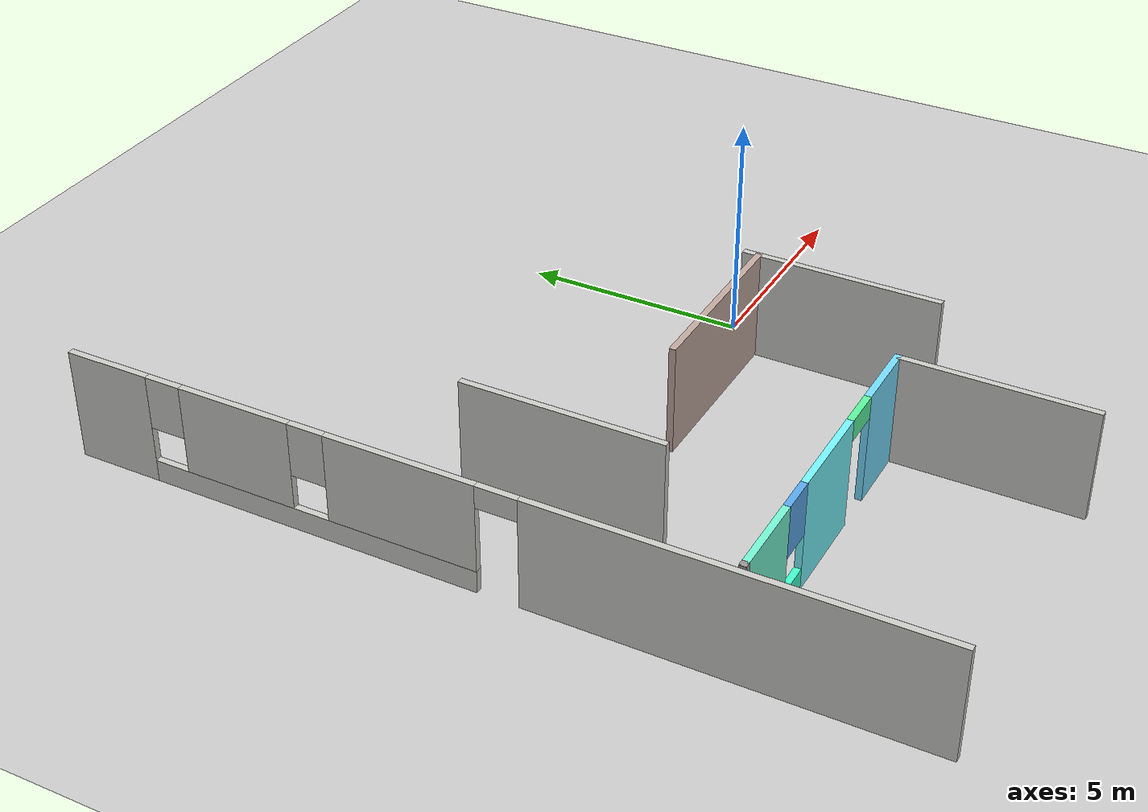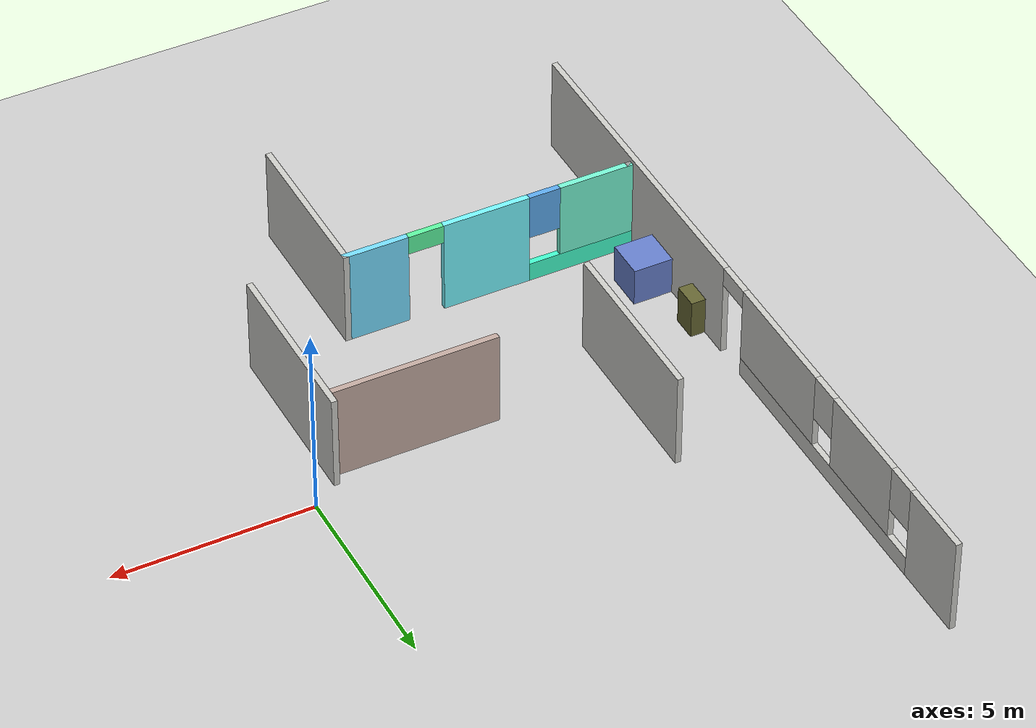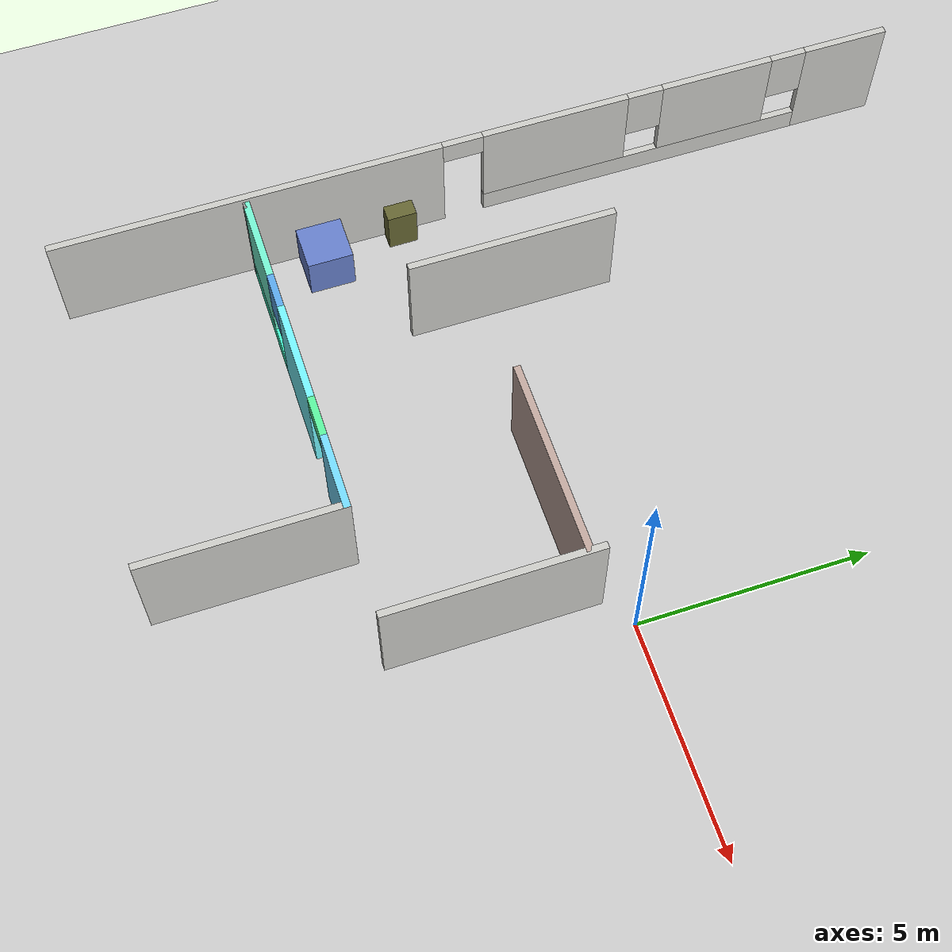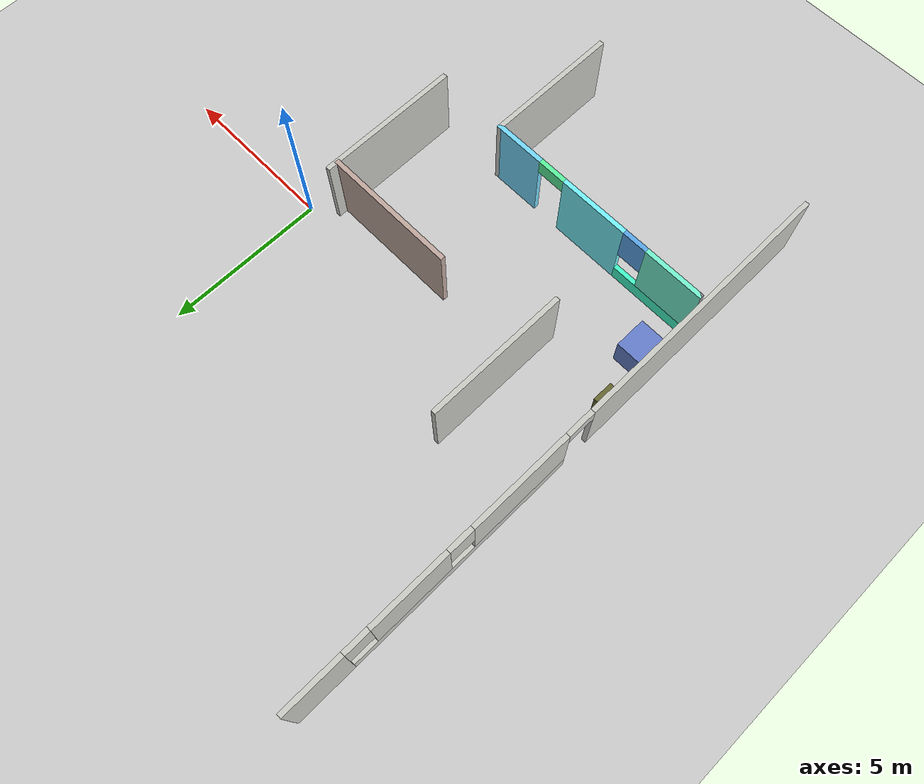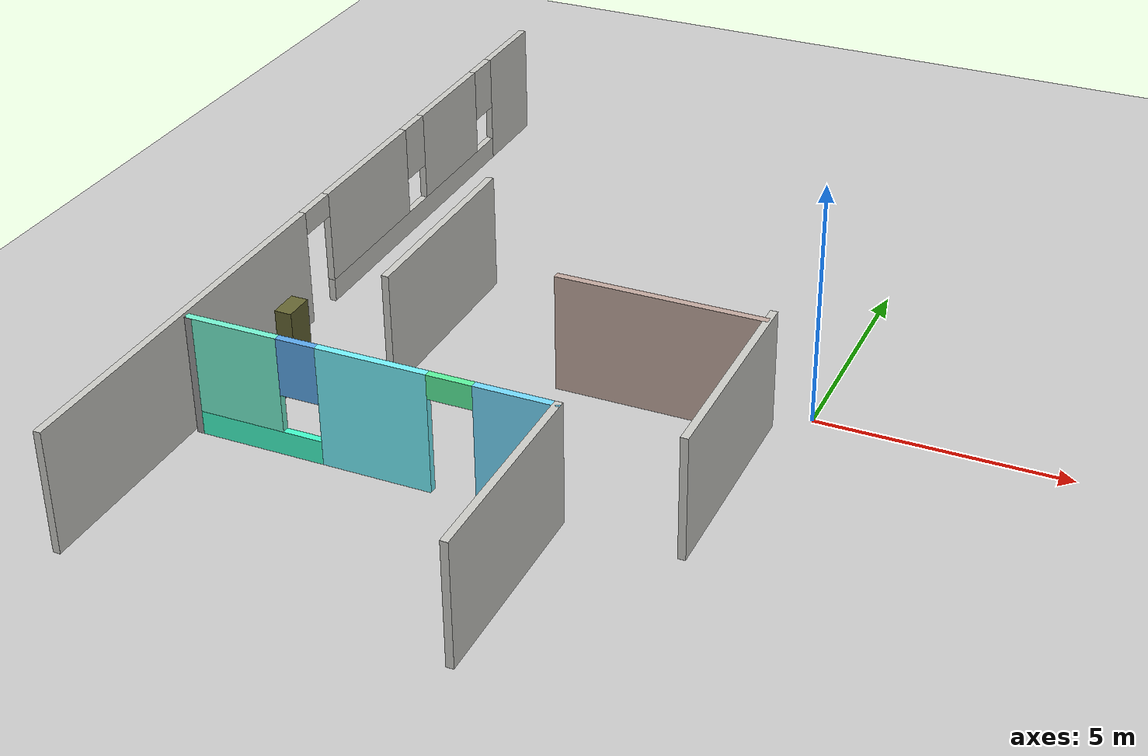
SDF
<sdf version="1.7">
 <world name="default">
  <model name="ground_plane">
   <static>1</static>
   <link name="link">
    <collision name="collision">
     <geometry><plane><normal>0 0 1</normal><size>100 100</size></plane></geometry>
     <surface><friction><ode><mu>100</mu><mu2>50</mu2></ode></friction></surface>
    </collision>
    <visual name="visual">
     <cast_shadows>0</cast_shadows>
     <geometry><plane><normal>0 0 1</normal><size>100 100</size></plane></geometry>
     <material>
      <script><uri>file://media/materials/scripts/gazebo.material</uri><name>Gazebo/Grey</name></script>
     </material>
    </visual>
   </link>
  </model>
  <model name="unit_box9">
   <link name="link">
    <inertial>
     <mass>1</mass>
     <inertia>
      <ixx>0.166667</ixx>
      <ixy>0</ixy>
      <ixz>0</ixz>
      <iyy>0.166667</iyy>
      <iyz>0</iyz>
      <izz>0.166667</izz>
     </inertia>
    </inertial>
    <visual name="visual">
     <geometry><box><size>1 1 1</size></box></geometry>
     <material>
      <script><name>Gazebo/Grey</name><uri>file://media/materials/scripts/gazebo.material</uri></script>
      <shader type="pixel"><normal_map>__default__</normal_map></shader>
      <ambient>0.4 0.5 0.8 0</ambient>
      <diffuse>0.7 0.7 0.7 1</diffuse>
      <specular>0.01 0.01 0.01 1</specular>
      <emissive>0 0 0 1</emissive>
     </material>
    </visual>
    <collision name="collision">
     <geometry><box><size>1 1 1</size></box></geometry>
     <surface>
      <friction>
       <ode><mu>1</mu><mu2>1</mu2><fdir1>0 0 0</fdir1><slip1>0</slip1><slip2>0</slip2></ode>
       <torsional>
        <coefficient>1</coefficient>
        <patch_radius>0</patch_radius>
        <surface_radius>0</surface_radius>
        <use_patch_radius>1</use_patch_radius>
        <ode><slip>0</slip></ode>
       </torsional>
      </friction>
      <bounce><restitution_coefficient>0</restitution_coefficient><threshold>1e+06</threshold></bounce>
      <contact>
       <collide_without_contact>0</collide_without_contact>
       <collide_without_contact_bitmask>1</collide_without_contact_bitmask>
       <collide_bitmask>1</collide_bitmask>
       <ode>
        <soft_cfm>0</soft_cfm>
        <soft_erp>0.2</soft_erp>
        <kp>1e+13</kp>
        <kd>1</kd>
        <max_vel>0.01</max_vel>
        <min_depth>0</min_depth>
       </ode>
       <bullet>
        <split_impulse>1</split_impulse>
        <split_impulse_penetration_threshold>-0.01</split_impulse_penetration_threshold>
        <soft_cfm>0</soft_cfm>
        <soft_erp>0.2</soft_erp>
        <kp>1e+13</kp>
        <kd>1</kd>
       </bullet>
      </contact>
     </surface>
    </collision>
   </link>
   <static>0</static>
   <pose>-10.066 -3.39499 0.5 0 0 -5e-06</pose>
  </model>
  <model name="ball_bearing">
   <link name="link">
    <pose>0 0 0.003 0 -0 0</pose>
    <inertial>
     <mass>0.0011</mass>
     <inertia>
      <ixx>3.96e-09</ixx>
      <ixy>0</ixy>
      <ixz>0</ixz>
      <iyy>3.96e-09</iyy>
      <iyz>0</iyz>
      <izz>3.96e-09</izz>
     </inertia>
    </inertial>
    <collision name="collision">
     <geometry><sphere><radius>0.003</radius></sphere></geometry>
     <surface>
      <contact>
       <poissons_ratio>0.305</poissons_ratio>
       <elastic_modulus>2e+11</elastic_modulus>
       <ode><kp>100000</kp><kd>100</kd><max_vel>100</max_vel><min_depth>0.001</min_depth></ode>
      </contact>
      <friction>
       <torsional>
        <coefficient>1</coefficient>
        <use_patch_radius>0</use_patch_radius>
        <surface_radius>0.01</surface_radius>
       </torsional>
      </friction>
     </surface>
    </collision>
    <visual name="visual">
     <geometry><sphere><radius>0.003</radius></sphere></geometry>
     <material>
      <script><uri>file://media/materials/scripts/gazebo.material</uri><name>Gazebo/Grey</name></script>
     </material>
    </visual>
    <velocity_decay><linear>0</linear><angular>0.005</angular></velocity_decay>
   </link>
   <pose>-4.13788 -6.77252 -0.001 0 -0 0</pose>
  </model>
  <model name="unit_box14">
   <link name="link">
    <inertial>
     <mass>1</mass>
     <inertia>
      <ixx>0.166667</ixx>
      <ixy>0</ixy>
      <ixz>0</ixz>
      <iyy>0.166667</iyy>
      <iyz>0</iyz>
      <izz>0.166667</izz>
     </inertia>
    </inertial>
    <visual name="visual">
     <geometry><box><size>0.369721 0.645498 1</size></box></geometry>
     <material>
      <script><name>Gazebo/Grey</name><uri>file://media/materials/scripts/gazebo.material</uri></script>
      <shader type="pixel"><normal_map>__default__</normal_map></shader>
      <ambient>0.4 0.4 0.2 0</ambient>
      <diffuse>0.7 0.7 0.7 1</diffuse>
      <specular>0.01 0.01 0.01 1</specular>
      <emissive>0 0 0 1</emissive>
     </material>
    </visual>
    <collision name="collision">
     <geometry><box><size>0.369721 0.645498 1</size></box></geometry>
     <surface>
      <friction>
       <ode><mu>1</mu><mu2>1</mu2><fdir1>0 0 0</fdir1><slip1>0</slip1><slip2>0</slip2></ode>
       <torsional>
        <coefficient>1</coefficient>
        <patch_radius>0</patch_radius>
        <surface_radius>0</surface_radius>
        <use_patch_radius>1</use_patch_radius>
        <ode><slip>0</slip></ode>
       </torsional>
      </friction>
      <bounce><restitution_coefficient>0</restitution_coefficient><threshold>1e+06</threshold></bounce>
      <contact>
       <collide_without_contact>0</collide_without_contact>
       <collide_without_contact_bitmask>1</collide_without_contact_bitmask>
       <collide_bitmask>1</collide_bitmask>
       <ode>
        <soft_cfm>0</soft_cfm>
        <soft_erp>0.2</soft_erp>
        <kp>1e+13</kp>
        <kd>1</kd>
        <max_vel>0.01</max_vel>
        <min_depth>0</min_depth>
       </ode>
       <bullet>
        <split_impulse>1</split_impulse>
        <split_impulse_penetration_threshold>-0.01</split_impulse_penetration_threshold>
        <soft_cfm>0</soft_cfm>
        <soft_erp>0.2</soft_erp>
        <kp>1e+13</kp>
        <kd>1</kd>
       </bullet>
      </contact>
     </surface>
    </collision>
   </link>
   <static>0</static>
   <pose>-10.3777 -1.60096 0.5 0 -0 5e-06</pose>
  </model>
  <model name="training_area">
   <link name="Wall_11">
    <pose>-2.97768 -7.23047 0 0 0 -1.5708</pose>
    <visual name="Wall_11_Visual">
     <pose>0 0 1.25 0 -0 0</pose>
     <geometry><box><size>4.25 0.15 2.5</size></box></geometry>
     <material>
      <script><uri>file://media/materials/scripts/gazebo.material</uri><name>Gazebo/CeilingTiled</name></script>
      <ambient>0.760784 0.662745 0.627451 1</ambient>
      <shader type="pixel"/>
     </material>
     <meta><layer>0</layer></meta>
    </visual>
    <collision name="Wall_11_Collision">
     <pose>0 0 1.25 0 -0 0</pose>
     <geometry><box><size>4.25 0.15 2.5</size></box></geometry>
     <surface>
      <friction>
       <ode><mu>1</mu><mu2>1</mu2><fdir1>0 0 0</fdir1><slip1>0</slip1><slip2>0</slip2></ode>
       <torsional>
        <coefficient>1</coefficient>
        <patch_radius>0</patch_radius>
        <surface_radius>0</surface_radius>
        <use_patch_radius>1</use_patch_radius>
        <ode><slip>0</slip></ode>
       </torsional>
      </friction>
      <bounce><restitution_coefficient>0</restitution_coefficient><threshold>1e+06</threshold></bounce>
      <contact>
       <collide_without_contact>0</collide_without_contact>
       <collide_without_contact_bitmask>1</collide_without_contact_bitmask>
       <collide_bitmask>1</collide_bitmask>
       <ode>
        <soft_cfm>0</soft_cfm>
        <soft_erp>0.2</soft_erp>
        <kp>1e+13</kp>
        <kd>1</kd>
        <max_vel>0.01</max_vel>
        <min_depth>0</min_depth>
       </ode>
       <bullet>
        <split_impulse>1</split_impulse>
        <split_impulse_penetration_threshold>-0.01</split_impulse_penetration_threshold>
        <soft_cfm>0</soft_cfm>
        <soft_erp>0.2</soft_erp>
        <kp>1e+13</kp>
        <kd>1</kd>
       </bullet>
      </contact>
     </surface>
    </collision>
   </link>
   <link name="Wall_13">
    <pose>-6.65268 -5.18047 0 0 -0 3.14159</pose>
    <inertial>
     <mass>1</mass>
     <inertia><ixx>1</ixx><ixy>0</ixy><ixz>0</ixz><iyy>1</iyy><iyz>0</iyz><izz>1</izz></inertia>
    </inertial>
    <visual name="Wall_13_Visual_2">
     <pose>2.39091 0 0.25 0 -0 0</pose>
     <geometry><box><size>2.71819 0.15 0.5</size></box></geometry>
     <material>
      <script><uri>file://media/materials/scripts/gazebo.material</uri><name>Gazebo/Grey</name></script>
      <ambient>0.261 1 0.8 1</ambient>
      <shader type="pixel"><normal_map>__default__</normal_map></shader>
      <diffuse>0.7 0.7 0.7 1</diffuse>
      <specular>0.01 0.01 0.01 1</specular>
      <emissive>0 0 0 1</emissive>
     </material>
     <meta><layer>0</layer></meta>
    </visual>
    <visual name="Wall_13_Visual_5">
     <pose>-1.64458 0 2.25 0 -0 0</pose>
     <geometry><box><size>0.9 0.15 0.5</size></box></geometry>
     <material>
      <script><uri>file://media/materials/scripts/gazebo.material</uri><name>Gazebo/Grey</name></script>
      <ambient>0.361 0.963 0.627 1</ambient>
      <shader type="pixel"><normal_map>__default__</normal_map></shader>
      <diffuse>0.7 0.7 0.7 1</diffuse>
      <specular>0.01 0.01 0.01 1</specular>
      <emissive>0 0 0 1</emissive>
     </material>
     <meta><layer>0</layer></meta>
    </visual>
    <visual name="Wall_13_Visual_3">
     <pose>2.79091 0 1.5 0 -0 0</pose>
     <geometry><box><size>1.91819 0.15 2</size></box></geometry>
     <material>
      <script><uri>file://media/materials/scripts/gazebo.material</uri><name>Gazebo/Grey</name></script>
      <ambient>0.461 0.963 0.827 1</ambient>
      <shader type="pixel"><normal_map>__default__</normal_map></shader>
      <diffuse>0.7 0.7 0.7 1</diffuse>
      <specular>0.01 0.01 0.01 1</specular>
      <emissive>0 0 0 1</emissive>
     </material>
     <meta><layer>0</layer></meta>
    </visual>
    <visual name="Wall_13_Visual_1">
     <pose>-0.081383 0 1.25 0 -0 0</pose>
     <geometry><box><size>2.22639 0.15 2.5</size></box></geometry>
     <material>
      <script><uri>file://media/materials/scripts/gazebo.material</uri><name>Gazebo/Grey</name></script>
      <ambient>0.461 0.963 1 1</ambient>
      <shader type="pixel"><normal_map>__default__</normal_map></shader>
      <diffuse>0.7 0.7 0.7 1</diffuse>
      <specular>0.01 0.01 0.01 1</specular>
      <emissive>0 0 0 1</emissive>
     </material>
     <meta><layer>0</layer></meta>
    </visual>
    <visual name="Wall_13_Visual_4">
     <pose>1.43181 0 1.9 0 -0 0</pose>
     <geometry><box><size>0.8 0.15 1.2</size></box></geometry>
     <material>
      <script><uri>file://media/materials/scripts/gazebo.material</uri><name>Gazebo/Grey</name></script>
      <ambient>0.361 0.663 0.927 1</ambient>
      <shader type="pixel"><normal_map>__default__</normal_map></shader>
      <diffuse>0.7 0.7 0.7 1</diffuse>
      <specular>0.01 0.01 0.01 1</specular>
      <emissive>0 0 0 1</emissive>
     </material>
     <meta><layer>0</layer></meta>
    </visual>
    <visual name="Wall_13_Visual_0">
     <pose>-2.92229 0 1.25 0 -0 0</pose>
     <geometry><box><size>1.65542 0.15 2.5</size></box></geometry>
     <material>
      <script><uri>file://media/materials/scripts/gazebo.material</uri><name>Gazebo/Grey</name></script>
      <ambient>0.461 0.863 1 1</ambient>
      <shader type="pixel"><normal_map>__default__</normal_map></shader>
      <diffuse>0.7 0.7 0.7 1</diffuse>
      <specular>0.01 0.01 0.01 1</specular>
      <emissive>0 0 0 1</emissive>
     </material>
     <meta><layer>0</layer></meta>
    </visual>
    <collision name="Wall_13_Collision_4">
     <pose>1.43181 0 1.9 0 -0 0</pose>
     <geometry><box><size>0.8 0.15 1.2</size></box></geometry>
     <surface>
      <friction>
       <ode><mu>1</mu><mu2>1</mu2><fdir1>0 0 0</fdir1><slip1>0</slip1><slip2>0</slip2></ode>
       <torsional>
        <coefficient>1</coefficient>
        <patch_radius>0</patch_radius>
        <surface_radius>0</surface_radius>
        <use_patch_radius>1</use_patch_radius>
        <ode><slip>0</slip></ode>
       </torsional>
      </friction>
      <bounce><restitution_coefficient>0</restitution_coefficient><threshold>1e+06</threshold></bounce>
      <contact>
       <collide_without_contact>0</collide_without_contact>
       <collide_without_contact_bitmask>1</collide_without_contact_bitmask>
       <collide_bitmask>1</collide_bitmask>
       <ode>
        <soft_cfm>0</soft_cfm>
        <soft_erp>0.2</soft_erp>
        <kp>1e+13</kp>
        <kd>1</kd>
        <max_vel>0.01</max_vel>
        <min_depth>0</min_depth>
       </ode>
       <bullet>
        <split_impulse>1</split_impulse>
        <split_impulse_penetration_threshold>-0.01</split_impulse_penetration_threshold>
        <soft_cfm>0</soft_cfm>
        <soft_erp>0.2</soft_erp>
        <kp>1e+13</kp>
        <kd>1</kd>
       </bullet>
      </contact>
     </surface>
    </collision>
    <collision name="Wall_13_Collision_1">
     <pose>-0.081383 0 1.25 0 -0 0</pose>
     <geometry><box><size>2.22639 0.15 2.5</size></box></geometry>
     <surface>
      <friction>
       <ode><mu>1</mu><mu2>1</mu2><fdir1>0 0 0</fdir1><slip1>0</slip1><slip2>0</slip2></ode>
       <torsional>
        <coefficient>1</coefficient>
        <patch_radius>0</patch_radius>
        <surface_radius>0</surface_radius>
        <use_patch_radius>1</use_patch_radius>
        <ode><slip>0</slip></ode>
       </torsional>
      </friction>
      <bounce><restitution_coefficient>0</restitution_coefficient><threshold>1e+06</threshold></bounce>
      <contact>
       <collide_without_contact>0</collide_without_contact>
       <collide_without_contact_bitmask>1</collide_without_contact_bitmask>
       <collide_bitmask>1</collide_bitmask>
       <ode>
        <soft_cfm>0</soft_cfm>
        <soft_erp>0.2</soft_erp>
        <kp>1e+13</kp>
        <kd>1</kd>
        <max_vel>0.01</max_vel>
        <min_depth>0</min_depth>
       </ode>
       <bullet>
        <split_impulse>1</split_impulse>
        <split_impulse_penetration_threshold>-0.01</split_impulse_penetration_threshold>
        <soft_cfm>0</soft_cfm>
        <soft_erp>0.2</soft_erp>
        <kp>1e+13</kp>
        <kd>1</kd>
       </bullet>
      </contact>
     </surface>
    </collision>
    <collision name="Wall_13_Collision_2">
     <pose>2.39091 0 0.25 0 -0 0</pose>
     <geometry><box><size>2.71819 0.15 0.5</size></box></geometry>
     <surface>
      <friction>
       <ode><mu>1</mu><mu2>1</mu2><fdir1>0 0 0</fdir1><slip1>0</slip1><slip2>0</slip2></ode>
       <torsional>
        <coefficient>1</coefficient>
        <patch_radius>0</patch_radius>
        <surface_radius>0</surface_radius>
        <use_patch_radius>1</use_patch_radius>
        <ode><slip>0</slip></ode>
       </torsional>
      </friction>
      <bounce><restitution_coefficient>0</restitution_coefficient><threshold>1e+06</threshold></bounce>
      <contact>
       <collide_without_contact>0</collide_without_contact>
       <collide_without_contact_bitmask>1</collide_without_contact_bitmask>
       <collide_bitmask>1</collide_bitmask>
       <ode>
        <soft_cfm>0</soft_cfm>
        <soft_erp>0.2</soft_erp>
        <kp>1e+13</kp>
        <kd>1</kd>
        <max_vel>0.01</max_vel>
        <min_depth>0</min_depth>
       </ode>
       <bullet>
        <split_impulse>1</split_impulse>
        <split_impulse_penetration_threshold>-0.01</split_impulse_penetration_threshold>
        <soft_cfm>0</soft_cfm>
        <soft_erp>0.2</soft_erp>
        <kp>1e+13</kp>
        <kd>1</kd>
       </bullet>
      </contact>
     </surface>
    </collision>
    <collision name="Wall_13_Collision_0">
     <pose>-2.92229 0 1.25 0 -0 0</pose>
     <geometry><box><size>1.65542 0.15 2.5</size></box></geometry>
     <surface>
      <friction>
       <ode><mu>1</mu><mu2>1</mu2><fdir1>0 0 0</fdir1><slip1>0</slip1><slip2>0</slip2></ode>
       <torsional>
        <coefficient>1</coefficient>
        <patch_radius>0</patch_radius>
        <surface_radius>0</surface_radius>
        <use_patch_radius>1</use_patch_radius>
        <ode><slip>0</slip></ode>
       </torsional>
      </friction>
      <bounce><restitution_coefficient>0</restitution_coefficient><threshold>1e+06</threshold></bounce>
      <contact>
       <collide_without_contact>0</collide_without_contact>
       <collide_without_contact_bitmask>1</collide_without_contact_bitmask>
       <collide_bitmask>1</collide_bitmask>
       <ode>
        <soft_cfm>0</soft_cfm>
        <soft_erp>0.2</soft_erp>
        <kp>1e+13</kp>
        <kd>1</kd>
        <max_vel>0.01</max_vel>
        <min_depth>0</min_depth>
       </ode>
       <bullet>
        <split_impulse>1</split_impulse>
        <split_impulse_penetration_threshold>-0.01</split_impulse_penetration_threshold>
        <soft_cfm>0</soft_cfm>
        <soft_erp>0.2</soft_erp>
        <kp>1e+13</kp>
        <kd>1</kd>
       </bullet>
      </contact>
     </surface>
    </collision>
    <collision name="Wall_13_Collision_5">
     <pose>-1.64458 0 2.25 0 -0 0</pose>
     <geometry><box><size>0.9 0.15 0.5</size></box></geometry>
     <surface>
      <friction>
       <ode><mu>1</mu><mu2>1</mu2><fdir1>0 0 0</fdir1><slip1>0</slip1><slip2>0</slip2></ode>
       <torsional>
        <coefficient>1</coefficient>
        <patch_radius>0</patch_radius>
        <surface_radius>0</surface_radius>
        <use_patch_radius>1</use_patch_radius>
        <ode><slip>0</slip></ode>
       </torsional>
      </friction>
      <bounce><restitution_coefficient>0</restitution_coefficient><threshold>1e+06</threshold></bounce>
      <contact>
       <collide_without_contact>0</collide_without_contact>
       <collide_without_contact_bitmask>1</collide_without_contact_bitmask>
       <collide_bitmask>1</collide_bitmask>
       <ode>
        <soft_cfm>0</soft_cfm>
        <soft_erp>0.2</soft_erp>
        <kp>1e+13</kp>
        <kd>1</kd>
        <max_vel>0.01</max_vel>
        <min_depth>0</min_depth>
       </ode>
       <bullet>
        <split_impulse>1</split_impulse>
        <split_impulse_penetration_threshold>-0.01</split_impulse_penetration_threshold>
        <soft_cfm>0</soft_cfm>
        <soft_erp>0.2</soft_erp>
        <kp>1e+13</kp>
        <kd>1</kd>
       </bullet>
      </contact>
     </surface>
    </collision>
    <collision name="Wall_13_Collision_3">
     <pose>2.79091 0 1.5 0 -0 0</pose>
     <geometry><box><size>1.91819 0.15 2</size></box></geometry>
     <surface>
      <friction>
       <ode><mu>1</mu><mu2>1</mu2><fdir1>0 0 0</fdir1><slip1>0</slip1><slip2>0</slip2></ode>
       <torsional>
        <coefficient>1</coefficient>
        <patch_radius>0</patch_radius>
        <surface_radius>0</surface_radius>
        <use_patch_radius>1</use_patch_radius>
        <ode><slip>0</slip></ode>
       </torsional>
      </friction>
      <bounce><restitution_coefficient>0</restitution_coefficient><threshold>1e+06</threshold></bounce>
      <contact>
       <collide_without_contact>0</collide_without_contact>
       <collide_without_contact_bitmask>1</collide_without_contact_bitmask>
       <collide_bitmask>1</collide_bitmask>
       <ode>
        <soft_cfm>0</soft_cfm>
        <soft_erp>0.2</soft_erp>
        <kp>1e+13</kp>
        <kd>1</kd>
        <max_vel>0.01</max_vel>
        <min_depth>0</min_depth>
       </ode>
       <bullet>
        <split_impulse>1</split_impulse>
        <split_impulse_penetration_threshold>-0.01</split_impulse_penetration_threshold>
        <soft_cfm>0</soft_cfm>
        <soft_erp>0.2</soft_erp>
        <kp>1e+13</kp>
        <kd>1</kd>
       </bullet>
      </contact>
     </surface>
    </collision>
   </link>
   <link name="Wall_14">
    <pose>-10.3277 -5.18047 0 0 -0 0</pose>
    <visual name="Wall_14_Visual">
     <pose>0 0 1.25 0 -0 0</pose>
     <geometry><box><size>0.15 0.15 2.5</size></box></geometry>
     <material>
      <script><uri>file://media/materials/scripts/gazebo.material</uri><name>Gazebo/Grey</name></script>
      <ambient>1 1 1 1</ambient>
      <shader type="pixel"/>
     </material>
     <meta><layer>0</layer></meta>
    </visual>
    <collision name="Wall_14_Collision">
     <pose>0 0 1.25 0 -0 0</pose>
     <geometry><box><size>0.15 0.15 2.5</size></box></geometry>
     <surface>
      <friction>
       <ode><mu>1</mu><mu2>1</mu2><fdir1>0 0 0</fdir1><slip1>0</slip1><slip2>0</slip2></ode>
       <torsional>
        <coefficient>1</coefficient>
        <patch_radius>0</patch_radius>
        <surface_radius>0</surface_radius>
        <use_patch_radius>1</use_patch_radius>
        <ode><slip>0</slip></ode>
       </torsional>
      </friction>
      <bounce><restitution_coefficient>0</restitution_coefficient><threshold>1e+06</threshold></bounce>
      <contact>
       <collide_without_contact>0</collide_without_contact>
       <collide_without_contact_bitmask>1</collide_without_contact_bitmask>
       <collide_bitmask>1</collide_bitmask>
       <ode>
        <soft_cfm>0</soft_cfm>
        <soft_erp>0.2</soft_erp>
        <kp>1e+13</kp>
        <kd>1</kd>
        <max_vel>0.01</max_vel>
        <min_depth>0</min_depth>
       </ode>
       <bullet>
        <split_impulse>1</split_impulse>
        <split_impulse_penetration_threshold>-0.01</split_impulse_penetration_threshold>
        <soft_cfm>0</soft_cfm>
        <soft_erp>0.2</soft_erp>
        <kp>1e+13</kp>
        <kd>1</kd>
       </bullet>
      </contact>
     </surface>
    </collision>
   </link>
   <link name="Wall_16">
    <pose>-2.72495 -1.14348 0 0 -0 0</pose>
    <visual name="Wall_16_Visual">
     <pose>0 0 1.25 0 -0 0</pose>
     <geometry><box><size>4.25 0.15 2.5</size></box></geometry>
     <material>
      <script><uri>file://media/materials/scripts/gazebo.material</uri><name>Gazebo/Grey</name></script>
      <ambient>0.760784 0.662745 0.627451 1</ambient>
      <shader type="pixel"/>
     </material>
     <meta><layer>0</layer></meta>
    </visual>
    <collision name="Wall_16_Collision">
     <pose>0 0 1.25 0 -0 0</pose>
     <geometry><box><size>4.25 0.15 2.5</size></box></geometry>
     <surface>
      <friction>
       <ode><mu>1</mu><mu2>1</mu2><fdir1>0 0 0</fdir1><slip1>0</slip1><slip2>0</slip2></ode>
       <torsional>
        <coefficient>1</coefficient>
        <patch_radius>0</patch_radius>
        <surface_radius>0</surface_radius>
        <use_patch_radius>1</use_patch_radius>
        <ode><slip>0</slip></ode>
       </torsional>
      </friction>
      <bounce><restitution_coefficient>0</restitution_coefficient><threshold>1e+06</threshold></bounce>
      <contact>
       <collide_without_contact>0</collide_without_contact>
       <collide_without_contact_bitmask>1</collide_without_contact_bitmask>
       <collide_bitmask>1</collide_bitmask>
       <ode>
        <soft_cfm>0</soft_cfm>
        <soft_erp>0.2</soft_erp>
        <kp>1e+13</kp>
        <kd>1</kd>
        <max_vel>0.01</max_vel>
        <min_depth>0</min_depth>
       </ode>
       <bullet>
        <split_impulse>1</split_impulse>
        <split_impulse_penetration_threshold>-0.01</split_impulse_penetration_threshold>
        <soft_cfm>0</soft_cfm>
        <soft_erp>0.2</soft_erp>
        <kp>1e+13</kp>
        <kd>1</kd>
       </bullet>
      </contact>
     </surface>
    </collision>
   </link>
   <link name="Wall_20">
    <pose>-0.625048 -3.03701 0 0 -0 1.5708</pose>
    <inertial>
     <mass>1</mass>
     <inertia><ixx>1</ixx><ixy>0</ixy><ixz>0</ixz><iyy>1</iyy><iyz>0</iyz><izz>1</izz></inertia>
    </inertial>
    <visual name="Wall_20_Visual">
     <pose>0 0 1.25 0 -0 0</pose>
     <geometry><box><size>4.5 0.15 2.5</size></box></geometry>
     <material>
      <script><uri>file://media/materials/scripts/gazebo.material</uri><name>Gazebo/CeilingTiled</name></script>
      <ambient>0.596 0.475 0.42 1</ambient>
      <shader type="pixel"><normal_map>__default__</normal_map></shader>
      <diffuse>1 1 1 1</diffuse>
      <specular>0 0 0 1</specular>
      <emissive>0 0 0 1</emissive>
     </material>
     <meta><layer>0</layer></meta>
    </visual>
    <collision name="Wall_20_Collision">
     <pose>0 0 1.25 0 -0 0</pose>
     <geometry><box><size>4.5 0.15 2.5</size></box></geometry>
     <surface>
      <friction>
       <ode><mu>1</mu><mu2>1</mu2><fdir1>0 0 0</fdir1><slip1>0</slip1><slip2>0</slip2></ode>
       <torsional>
        <coefficient>1</coefficient>
        <patch_radius>0</patch_radius>
        <surface_radius>0</surface_radius>
        <use_patch_radius>1</use_patch_radius>
        <ode><slip>0</slip></ode>
       </torsional>
      </friction>
      <bounce><restitution_coefficient>0</restitution_coefficient><threshold>1e+06</threshold></bounce>
      <contact>
       <collide_without_contact>0</collide_without_contact>
       <collide_without_contact_bitmask>1</collide_without_contact_bitmask>
       <collide_bitmask>1</collide_bitmask>
       <ode>
        <soft_cfm>0</soft_cfm>
        <soft_erp>0.2</soft_erp>
        <kp>1e+13</kp>
        <kd>1</kd>
        <max_vel>0.01</max_vel>
        <min_depth>0</min_depth>
       </ode>
       <bullet>
        <split_impulse>1</split_impulse>
        <split_impulse_penetration_threshold>-0.01</split_impulse_penetration_threshold>
        <soft_cfm>0</soft_cfm>
        <soft_erp>0.2</soft_erp>
        <kp>1e+13</kp>
        <kd>1</kd>
       </bullet>
      </contact>
     </surface>
    </collision>
   </link>
   <link name="Wall_26">
    <pose>-7.78566 -0.226392 0 0 0 -1.5708</pose>
    <inertial>
     <mass>1</mass>
     <inertia><ixx>1</ixx><ixy>0</ixy><ixz>0</ixz><iyy>1</iyy><iyz>0</iyz><izz>1</izz></inertia>
    </inertial>
    <visual name="Wall_26_Visual">
     <pose>0 0 1.25 0 -0 0</pose>
     <geometry><box><size>4.5 0.15 2.5</size></box></geometry>
     <material>
      <script><uri>file://media/materials/scripts/gazebo.material</uri><name>Gazebo/CeilingTiled</name></script>
      <ambient>0.6 0.6 0.106 1</ambient>
      <shader type="pixel"><normal_map>__default__</normal_map></shader>
      <diffuse>1 1 1 1</diffuse>
      <specular>0 0 0 1</specular>
      <emissive>0 0 0 1</emissive>
     </material>
     <meta><layer>0</layer></meta>
    </visual>
    <collision name="Wall_26_Collision">
     <pose>0 0 1.25 0 -0 0</pose>
     <geometry><box><size>4.5 0.15 2.5</size></box></geometry>
     <surface>
      <friction>
       <ode><mu>1</mu><mu2>1</mu2><fdir1>0 0 0</fdir1><slip1>0</slip1><slip2>0</slip2></ode>
       <torsional>
        <coefficient>1</coefficient>
        <patch_radius>0</patch_radius>
        <surface_radius>0</surface_radius>
        <use_patch_radius>1</use_patch_radius>
        <ode><slip>0</slip></ode>
       </torsional>
      </friction>
      <bounce><restitution_coefficient>0</restitution_coefficient><threshold>1e+06</threshold></bounce>
      <contact>
       <collide_without_contact>0</collide_without_contact>
       <collide_without_contact_bitmask>1</collide_without_contact_bitmask>
       <collide_bitmask>1</collide_bitmask>
       <ode>
        <soft_cfm>0</soft_cfm>
        <soft_erp>0.2</soft_erp>
        <kp>1e+13</kp>
        <kd>1</kd>
        <max_vel>0.01</max_vel>
        <min_depth>0</min_depth>
       </ode>
       <bullet>
        <split_impulse>1</split_impulse>
        <split_impulse_penetration_threshold>-0.01</split_impulse_penetration_threshold>
        <soft_cfm>0</soft_cfm>
        <soft_erp>0.2</soft_erp>
        <kp>1e+13</kp>
        <kd>1</kd>
       </bullet>
      </contact>
     </surface>
    </collision>
   </link>
   <link name="Wall_5">
    <pose>-10.545 0 0 0 0 -1.5708</pose>
    <inertial>
     <mass>1</mass>
     <inertia><ixx>1</ixx><ixy>0</ixy><ixz>0</ixz><iyy>1</iyy><iyz>0</iyz><izz>1</izz></inertia>
    </inertial>
    <visual name="Wall_5_Visual_4">
     <pose>-1.68881 0 1.5 0 -0 0</pose>
     <geometry><box><size>3.2999 0.15 2</size></box></geometry>
     <material>
      <script><uri>file://media/materials/scripts/gazebo.material</uri><name>Gazebo/CeilingTiled</name></script>
      <ambient>0.5 0.9 0.806 1</ambient>
      <shader type="pixel"><normal_map>__default__</normal_map></shader>
      <diffuse>1 1 1 1</diffuse>
      <specular>0 0 0 1</specular>
      <emissive>0 0 0 1</emissive>
     </material>
     <meta><layer>0</layer></meta>
    </visual>
    <visual name="Wall_5_Visual_6">
     <pose>-3.73876 0 1.9 0 -0 0</pose>
     <geometry><box><size>0.8 0.15 1.2</size></box></geometry>
     <material>
      <script><uri>file://media/materials/scripts/gazebo.material</uri><name>Gazebo/CeilingTiled</name></script>
      <ambient>1 0.265 0.106 1</ambient>
      <shader type="pixel"><normal_map>__default__</normal_map></shader>
      <diffuse>1 1 1 1</diffuse>
      <specular>0 0 0 1</specular>
      <emissive>0 0 0 1</emissive>
     </material>
     <meta><layer>0</layer></meta>
    </visual>
    <visual name="Wall_5_Visual_2">
     <pose>-3.75691 0 0.25 0 -0 0</pose>
     <geometry><box><size>7.4361 0.15 0.5</size></box></geometry>
     <material>
      <script><uri>file://media/materials/scripts/gazebo.material</uri><name>Gazebo/CeilingTiled</name></script>
      <ambient>0.4 0.7 0.806 1</ambient>
      <shader type="pixel"><normal_map>__default__</normal_map></shader>
      <diffuse>1 1 1 1</diffuse>
      <specular>0 0 0 1</specular>
      <emissive>0 0 0 1</emissive>
     </material>
     <meta><layer>0</layer></meta>
    </visual>
    <visual name="Wall_5_Visual_0">
     <pose>-8.42498 0 1.25 0 -0 0</pose>
     <geometry><box><size>1.90004 0.15 2.5</size></box></geometry>
     <material>
      <script><uri>file://media/materials/scripts/gazebo.material</uri><name>Gazebo/CeilingTiled</name></script>
      <ambient>0.5 0.365 0.706 1</ambient>
      <shader type="pixel"><normal_map>__default__</normal_map></shader>
      <diffuse>1 1 1 1</diffuse>
      <specular>0 0 0 1</specular>
      <emissive>0 0 0 1</emissive>
     </material>
     <meta><layer>0</layer></meta>
    </visual>
    <visual name="Wall_5_Visual_5">
     <pose>-7.07496 0 1.9 0 -0 0</pose>
     <geometry><box><size>0.8 0.15 1.2</size></box></geometry>
     <material>
      <script><uri>file://media/materials/scripts/gazebo.material</uri><name>Gazebo/CeilingTiled</name></script>
      <ambient>0.3 0.965 0.806 1</ambient>
      <shader type="pixel"><normal_map>__default__</normal_map></shader>
      <diffuse>1 1 1 1</diffuse>
      <specular>0 0 0 1</specular>
      <emissive>0 0 0 1</emissive>
     </material>
     <meta><layer>0</layer></meta>
    </visual>
    <visual name="Wall_5_Visual_1">
     <pose>5.11807 0 1.25 0 -0 0</pose>
     <geometry><box><size>8.51386 0.15 2.5</size></box></geometry>
     <material>
      <script><uri>file://media/materials/scripts/gazebo.material</uri><name>Gazebo/CeilingTiled</name></script>
      <ambient>0.6 0.465 0.706 1</ambient>
      <shader type="pixel"><normal_map>__default__</normal_map></shader>
      <diffuse>1 1 1 1</diffuse>
      <specular>0 0 0 1</specular>
      <emissive>0 0 0 1</emissive>
     </material>
     <meta><layer>0</layer></meta>
    </visual>
    <visual name="Wall_5_Visual_7">
     <pose>0.41114 0 2.25 0 -0 0</pose>
     <geometry><box><size>0.9 0.15 0.5</size></box></geometry>
     <material>
      <script><uri>file://media/materials/scripts/gazebo.material</uri><name>Gazebo/CeilingTiled</name></script>
      <ambient>0.5 0.965 0.706 1</ambient>
      <shader type="pixel"><normal_map>__default__</normal_map></shader>
      <diffuse>1 1 1 1</diffuse>
      <specular>0 0 0 1</specular>
      <emissive>0 0 0 1</emissive>
     </material>
     <meta><layer>0</layer></meta>
    </visual>
    <visual name="Wall_5_Visual_3">
     <pose>-5.40686 0 1.5 0 -0 0</pose>
     <geometry><box><size>2.5362 0.15 2</size></box></geometry>
     <material>
      <script><uri>file://media/materials/scripts/gazebo.material</uri><name>Gazebo/CeilingTiled</name></script>
      <ambient>0.6 0.565 0.806 1</ambient>
      <shader type="pixel"><normal_map>__default__</normal_map></shader>
      <diffuse>1 1 1 1</diffuse>
      <specular>0 0 0 1</specular>
      <emissive>0 0 0 1</emissive>
     </material>
     <meta><layer>0</layer></meta>
    </visual>
    <collision name="Wall_5_Collision_5">
     <pose>-7.07496 0 1.9 0 -0 0</pose>
     <geometry><box><size>0.8 0.15 1.2</size></box></geometry>
     <surface>
      <friction>
       <ode><mu>1</mu><mu2>1</mu2><fdir1>0 0 0</fdir1><slip1>0</slip1><slip2>0</slip2></ode>
       <torsional>
        <coefficient>1</coefficient>
        <patch_radius>0</patch_radius>
        <surface_radius>0</surface_radius>
        <use_patch_radius>1</use_patch_radius>
        <ode><slip>0</slip></ode>
       </torsional>
      </friction>
      <bounce><restitution_coefficient>0</restitution_coefficient><threshold>1e+06</threshold></bounce>
      <contact>
       <collide_without_contact>0</collide_without_contact>
       <collide_without_contact_bitmask>1</collide_without_contact_bitmask>
       <collide_bitmask>1</collide_bitmask>
       <ode>
        <soft_cfm>0</soft_cfm>
        <soft_erp>0.2</soft_erp>
        <kp>1e+13</kp>
        <kd>1</kd>
        <max_vel>0.01</max_vel>
        <min_depth>0</min_depth>
       </ode>
       <bullet>
        <split_impulse>1</split_impulse>
        <split_impulse_penetration_threshold>-0.01</split_impulse_penetration_threshold>
        <soft_cfm>0</soft_cfm>
        <soft_erp>0.2</soft_erp>
        <kp>1e+13</kp>
        <kd>1</kd>
       </bullet>
      </contact>
     </surface>
    </collision>
    <collision name="Wall_5_Collision_1">
     <pose>5.11807 0 1.25 0 -0 0</pose>
     <geometry><box><size>8.51386 0.15 2.5</size></box></geometry>
     <surface>
      <friction>
       <ode><mu>1</mu><mu2>1</mu2><fdir1>0 0 0</fdir1><slip1>0</slip1><slip2>0</slip2></ode>
       <torsional>
        <coefficient>1</coefficient>
        <patch_radius>0</patch_radius>
        <surface_radius>0</surface_radius>
        <use_patch_radius>1</use_patch_radius>
        <ode><slip>0</slip></ode>
       </torsional>
      </friction>
      <bounce><restitution_coefficient>0</restitution_coefficient><threshold>1e+06</threshold></bounce>
      <contact>
       <collide_without_contact>0</collide_without_contact>
       <collide_without_contact_bitmask>1</collide_without_contact_bitmask>
       <collide_bitmask>1</collide_bitmask>
       <ode>
        <soft_cfm>0</soft_cfm>
        <soft_erp>0.2</soft_erp>
        <kp>1e+13</kp>
        <kd>1</kd>
        <max_vel>0.01</max_vel>
        <min_depth>0</min_depth>
       </ode>
       <bullet>
        <split_impulse>1</split_impulse>
        <split_impulse_penetration_threshold>-0.01</split_impulse_penetration_threshold>
        <soft_cfm>0</soft_cfm>
        <soft_erp>0.2</soft_erp>
        <kp>1e+13</kp>
        <kd>1</kd>
       </bullet>
      </contact>
     </surface>
    </collision>
    <collision name="Wall_5_Collision_2">
     <pose>-3.75691 0 0.25 0 -0 0</pose>
     <geometry><box><size>7.4361 0.15 0.5</size></box></geometry>
     <surface>
      <friction>
       <ode><mu>1</mu><mu2>1</mu2><fdir1>0 0 0</fdir1><slip1>0</slip1><slip2>0</slip2></ode>
       <torsional>
        <coefficient>1</coefficient>
        <patch_radius>0</patch_radius>
        <surface_radius>0</surface_radius>
        <use_patch_radius>1</use_patch_radius>
        <ode><slip>0</slip></ode>
       </torsional>
      </friction>
      <bounce><restitution_coefficient>0</restitution_coefficient><threshold>1e+06</threshold></bounce>
      <contact>
       <collide_without_contact>0</collide_without_contact>
       <collide_without_contact_bitmask>1</collide_without_contact_bitmask>
       <collide_bitmask>1</collide_bitmask>
       <ode>
        <soft_cfm>0</soft_cfm>
        <soft_erp>0.2</soft_erp>
        <kp>1e+13</kp>
        <kd>1</kd>
        <max_vel>0.01</max_vel>
        <min_depth>0</min_depth>
       </ode>
       <bullet>
        <split_impulse>1</split_impulse>
        <split_impulse_penetration_threshold>-0.01</split_impulse_penetration_threshold>
        <soft_cfm>0</soft_cfm>
        <soft_erp>0.2</soft_erp>
        <kp>1e+13</kp>
        <kd>1</kd>
       </bullet>
      </contact>
     </surface>
    </collision>
    <collision name="Wall_5_Collision_0">
     <pose>-8.42498 0 1.25 0 -0 0</pose>
     <geometry><box><size>1.90004 0.15 2.5</size></box></geometry>
     <surface>
      <friction>
       <ode><mu>1</mu><mu2>1</mu2><fdir1>0 0 0</fdir1><slip1>0</slip1><slip2>0</slip2></ode>
       <torsional>
        <coefficient>1</coefficient>
        <patch_radius>0</patch_radius>
        <surface_radius>0</surface_radius>
        <use_patch_radius>1</use_patch_radius>
        <ode><slip>0</slip></ode>
       </torsional>
      </friction>
      <bounce><restitution_coefficient>0</restitution_coefficient><threshold>1e+06</threshold></bounce>
      <contact>
       <collide_without_contact>0</collide_without_contact>
       <collide_without_contact_bitmask>1</collide_without_contact_bitmask>
       <collide_bitmask>1</collide_bitmask>
       <ode>
        <soft_cfm>0</soft_cfm>
        <soft_erp>0.2</soft_erp>
        <kp>1e+13</kp>
        <kd>1</kd>
        <max_vel>0.01</max_vel>
        <min_depth>0</min_depth>
       </ode>
       <bullet>
        <split_impulse>1</split_impulse>
        <split_impulse_penetration_threshold>-0.01</split_impulse_penetration_threshold>
        <soft_cfm>0</soft_cfm>
        <soft_erp>0.2</soft_erp>
        <kp>1e+13</kp>
        <kd>1</kd>
       </bullet>
      </contact>
     </surface>
    </collision>
    <collision name="Wall_5_Collision_4">
     <pose>-1.68881 0 1.5 0 -0 0</pose>
     <geometry><box><size>3.2999 0.15 2</size></box></geometry>
     <surface>
      <friction>
       <ode><mu>1</mu><mu2>1</mu2><fdir1>0 0 0</fdir1><slip1>0</slip1><slip2>0</slip2></ode>
       <torsional>
        <coefficient>1</coefficient>
        <patch_radius>0</patch_radius>
        <surface_radius>0</surface_radius>
        <use_patch_radius>1</use_patch_radius>
        <ode><slip>0</slip></ode>
       </torsional>
      </friction>
      <bounce><restitution_coefficient>0</restitution_coefficient><threshold>1e+06</threshold></bounce>
      <contact>
       <collide_without_contact>0</collide_without_contact>
       <collide_without_contact_bitmask>1</collide_without_contact_bitmask>
       <collide_bitmask>1</collide_bitmask>
       <ode>
        <soft_cfm>0</soft_cfm>
        <soft_erp>0.2</soft_erp>
        <kp>1e+13</kp>
        <kd>1</kd>
        <max_vel>0.01</max_vel>
        <min_depth>0</min_depth>
       </ode>
       <bullet>
        <split_impulse>1</split_impulse>
        <split_impulse_penetration_threshold>-0.01</split_impulse_penetration_threshold>
        <soft_cfm>0</soft_cfm>
        <soft_erp>0.2</soft_erp>
        <kp>1e+13</kp>
        <kd>1</kd>
       </bullet>
      </contact>
     </surface>
    </collision>
    <collision name="Wall_5_Collision_6">
     <pose>-3.73876 0 1.9 0 -0 0</pose>
     <geometry><box><size>0.8 0.15 1.2</size></box></geometry>
     <surface>
      <friction>
       <ode><mu>1</mu><mu2>1</mu2><fdir1>0 0 0</fdir1><slip1>0</slip1><slip2>0</slip2></ode>
       <torsional>
        <coefficient>1</coefficient>
        <patch_radius>0</patch_radius>
        <surface_radius>0</surface_radius>
        <use_patch_radius>1</use_patch_radius>
        <ode><slip>0</slip></ode>
       </torsional>
      </friction>
      <bounce><restitution_coefficient>0</restitution_coefficient><threshold>1e+06</threshold></bounce>
      <contact>
       <collide_without_contact>0</collide_without_contact>
       <collide_without_contact_bitmask>1</collide_without_contact_bitmask>
       <collide_bitmask>1</collide_bitmask>
       <ode>
        <soft_cfm>0</soft_cfm>
        <soft_erp>0.2</soft_erp>
        <kp>1e+13</kp>
        <kd>1</kd>
        <max_vel>0.01</max_vel>
        <min_depth>0</min_depth>
       </ode>
       <bullet>
        <split_impulse>1</split_impulse>
        <split_impulse_penetration_threshold>-0.01</split_impulse_penetration_threshold>
        <soft_cfm>0</soft_cfm>
        <soft_erp>0.2</soft_erp>
        <kp>1e+13</kp>
        <kd>1</kd>
       </bullet>
      </contact>
     </surface>
    </collision>
    <collision name="Wall_5_Collision_3">
     <pose>-5.40686 0 1.5 0 -0 0</pose>
     <geometry><box><size>2.5362 0.15 2</size></box></geometry>
     <surface>
      <friction>
       <ode><mu>1</mu><mu2>1</mu2><fdir1>0 0 0</fdir1><slip1>0</slip1><slip2>0</slip2></ode>
       <torsional>
        <coefficient>1</coefficient>
        <patch_radius>0</patch_radius>
        <surface_radius>0</surface_radius>
        <use_patch_radius>1</use_patch_radius>
        <ode><slip>0</slip></ode>
       </torsional>
      </friction>
      <bounce><restitution_coefficient>0</restitution_coefficient><threshold>1e+06</threshold></bounce>
      <contact>
       <collide_without_contact>0</collide_without_contact>
       <collide_without_contact_bitmask>1</collide_without_contact_bitmask>
       <collide_bitmask>1</collide_bitmask>
       <ode>
        <soft_cfm>0</soft_cfm>
        <soft_erp>0.2</soft_erp>
        <kp>1e+13</kp>
        <kd>1</kd>
        <max_vel>0.01</max_vel>
        <min_depth>0</min_depth>
       </ode>
       <bullet>
        <split_impulse>1</split_impulse>
        <split_impulse_penetration_threshold>-0.01</split_impulse_penetration_threshold>
        <soft_cfm>0</soft_cfm>
        <soft_erp>0.2</soft_erp>
        <kp>1e+13</kp>
        <kd>1</kd>
       </bullet>
      </contact>
     </surface>
    </collision>
    <collision name="Wall_5_Collision_7">
     <pose>0.41114 0 2.25 0 -0 0</pose>
     <geometry><box><size>0.9 0.15 0.5</size></box></geometry>
     <surface>
      <friction>
       <ode><mu>1</mu><mu2>1</mu2><fdir1>0 0 0</fdir1><slip1>0</slip1><slip2>0</slip2></ode>
       <torsional>
        <coefficient>1</coefficient>
        <patch_radius>0</patch_radius>
        <surface_radius>0</surface_radius>
        <use_patch_radius>1</use_patch_radius>
        <ode><slip>0</slip></ode>
       </torsional>
      </friction>
      <bounce><restitution_coefficient>0</restitution_coefficient><threshold>1e+06</threshold></bounce>
      <contact>
       <collide_without_contact>0</collide_without_contact>
       <collide_without_contact_bitmask>1</collide_without_contact_bitmask>
       <collide_bitmask>1</collide_bitmask>
       <ode>
        <soft_cfm>0</soft_cfm>
        <soft_erp>0.2</soft_erp>
        <kp>1e+13</kp>
        <kd>1</kd>
        <max_vel>0.01</max_vel>
        <min_depth>0</min_depth>
       </ode>
       <bullet>
        <split_impulse>1</split_impulse>
        <split_impulse_penetration_threshold>-0.01</split_impulse_penetration_threshold>
        <soft_cfm>0</soft_cfm>
        <soft_erp>0.2</soft_erp>
        <kp>1e+13</kp>
        <kd>1</kd>
       </bullet>
      </contact>
     </surface>
    </collision>
   </link>
   <static>1</static>
   <pose>-0.09596 0.33644 0 0 -0 0</pose>
  </model>
 </world>
</sdf>
